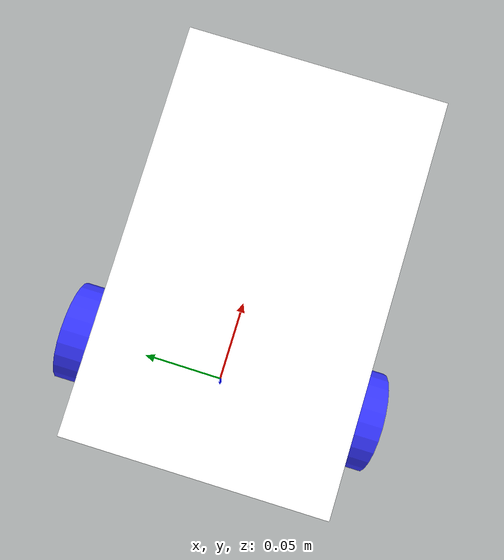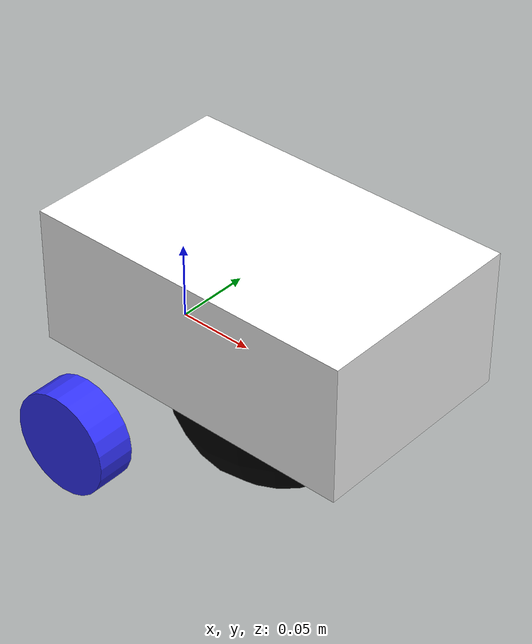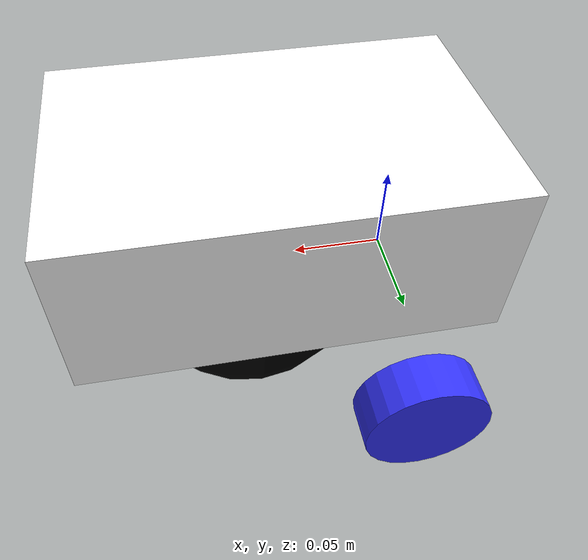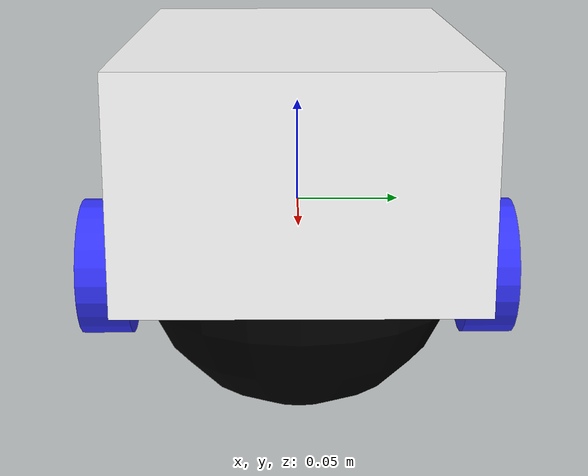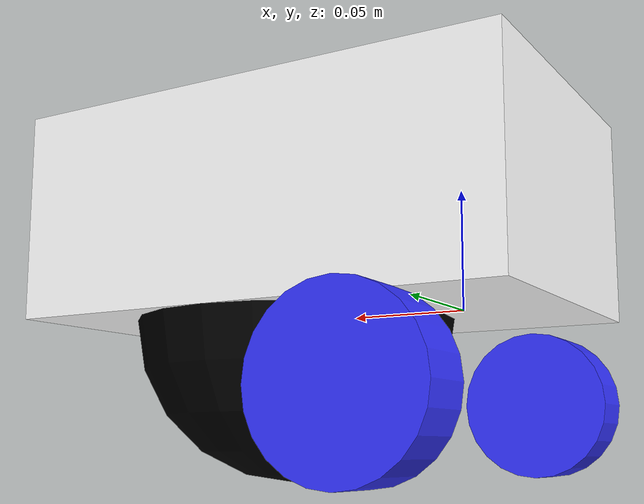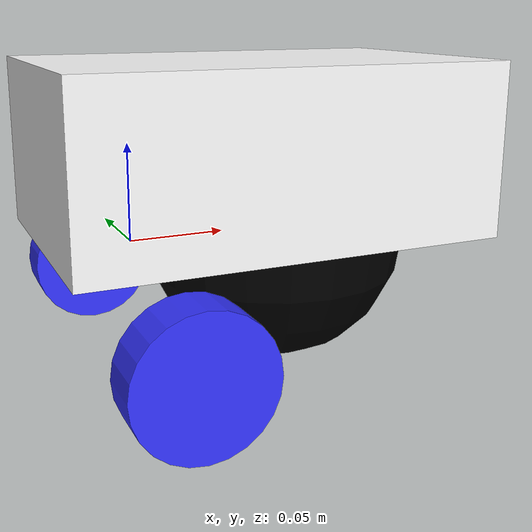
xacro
<?xml version="1.0"?>
<robot xmlns:xacro="http://www.ros.org/wiki/xacro">

    <xacro:include filename="inertial_macros.xacro"/>

    <material name="white">
        <color rgba="1 1 1 1"/>
    </material>

    <material name="orange">
        <color rgba="1 0.3 0.1 1"/>
    </material>

    <material name="blue">
        <color rgba="0.2 0.2 1 1"/>
    </material>

    <material name="black">
        <color rgba="0 0 0 1"/>
    </material>

    <material name="green">
        <color rgba="0 1 0 1"/>
    </material>

    <!-- BASE LINK-->
    <!-- base link origin centre point between two wheels -->
    <link name="base_link">

    </link>

    <!-- BASE_FOOTPRINT LINK -->
    <!-- Some nodes expect a base_footprint frame which should be the same as base_link except sitting on the floor. I just made it equal to base_link -->

    <joint name="base_footprint_joint" type="fixed">
        <parent link="base_link"/>
        <child link="base_footprint"/>
        <origin xyz="0 0 0" rpy="0 0 0"/>
    </joint>

    <link name="base_footprint">
    </link>

    <!-- CHASSIS LINK -->
    <joint name="chassis_joint" type="fixed">
        <parent link="base_link"/>
        <child link="chassis" />
        <origin xyz ="-0.045 0 0"/>
    </joint>

    <link name="chassis">
        <visual>
            <origin xyz="0.11 0 0.045"/> <!-- by default, chassis origin is in the centre, so shift it  forward by half in x and up by half in z-->
            <geometry>
                <box size="0.22 0.14 0.09"/>
            </geometry>
            <material name="white"/>
        </visual>
        <collision>
            <origin xyz="0.11 0 0.045"/> <!-- by default, chassis origin is in the centre, so shift it  forward by half in x and up by half in z-->
            <geometry>
                <box size="0.22 0.14 0.09"/>
            </geometry>
        </collision>
        <xacro:inertial_box mass="0.75" x="0.22" y="0.14" z="0.09">
            <origin xyz="0.11 0 0.045" rpy="0 0 0 "/>
        </xacro:inertial_box>
    </link>

    <gazebo reference="chassis">
        <material>Gazebo/White</material>
    </gazebo>

    <!-- LEFT WHEEL LINK -->
    <joint name = "left_wheel_joint" type="continuous">
        <parent link="base_link"/>
        <child link = "left_wheel"/>
        <origin xyz="0 0.095 -0.035" rpy="-${pi/2} 0 0"/> <!-- The left wheel is 0.1m left and 0.035m below the base link origin, and rotated to be on its side-->
        <axis xyz="0 0 1"/> <!-- Forward rotation is positive around z axis-->
    </joint>

    <link name = "left_wheel">
        <visual>
            <geometry>
                <cylinder radius="0.034" length="0.025"/>
            </geometry>
            <material name="blue"/>
        </visual>
        <collision>
            <geometry>
                <sphere radius="0.034"/>
            </geometry>
        </collision>
        <xacro:inertial_cylinder mass="0.1" length="0.025" radius="0.034">
            <origin xyz="0 0 0" rpy="0 0 0"/>
        </xacro:inertial_cylinder>
    </link>

    <gazebo reference="left_wheel">
        <material>Gazebo/Blue</material>
    </gazebo>

    <!-- RIGHT WHEEL LINK -->
    <joint name = "right_wheel_joint" type="continuous">
        <parent link="base_link"/>
        <child link = "right_wheel"/>
        <origin xyz="0 -0.095 -0.035" rpy="${pi/2} 0 0"/> <!-- The left wheel is 0.1m left and 0.035m below the base link origin, and rotated to be on its side-->
        <axis xyz="0 0 -1"/> <!-- Forward rotation is positive around -z axis-->
    </joint>

    <link name = "right_wheel">
        <visual>
            <geometry>
                <cylinder radius="0.034" length="0.025"/>
            </geometry>
            <material name="blue"/>
        </visual>
        <collision>
            <geometry>
                <sphere radius="0.034"/>
            </geometry>
        </collision>
        <xacro:inertial_cylinder mass="0.1" length="0.025" radius="0.034">
            <origin xyz="0 0 0" rpy="0 0 0"/>
        </xacro:inertial_cylinder>
    </link>

    <gazebo reference="right_wheel">
        <material>Gazebo/Blue</material>
    </gazebo>

    <!-- CASTER WHEEL LINK -->

    <joint name="caster_wheel_joint" type="fixed">
        <parent link="chassis"/>
        <child link="caster_wheel"/>
        <origin xyz="0.125 0 0"/>
    </joint>

    <link name="caster_wheel">
        <visual>
            <geometry>
                <sphere radius="0.07"/>
            </geometry>
            <material name="black"/>
        </visual>
        <collision>
            <geometry>
                <sphere radius="0.07"/>
            </geometry>
        </collision>
        <xacro:inertial_sphere mass="0.1" radius="0.07">
            <origin xyz="0 0 0" rpy="0 0 0"/>
        </xacro:inertial_sphere>
    </link>

    <gazebo reference="caster_wheel">
        <material>Gazebo/Black</material>
        <mu1 value="0.001"/>
        <mu2 value="0.001"/>
    </gazebo>

</robot>

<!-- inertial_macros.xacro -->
<robot xmlns:xacro="http://www.ros.org/wiki/xacro"  name="robot">

    <xacro:macro name="inertial_sphere" params="mass radius *origin">
        <inertial>
            <xacro:insert_block name="origin"/>
            <mass value="${mass}" />
            <inertia ixx="${(2/5) * mass * (radius*radius)}" ixy="0.0" ixz="0.0"
                    iyy="${(2/5) * mass * (radius*radius)}" iyz="0.0"
                    izz="${(2/5) * mass * (radius*radius)}" />
        </inertial>
    </xacro:macro>

    <xacro:macro name="inertial_box" params="mass x y z *origin">
        <inertial>
            <xacro:insert_block name="origin"/>
            <mass value="${mass}" />
            <inertia ixx="${(1/12) * mass * (y*y+z*z)}" ixy="0.0" ixz="0.0"
                    iyy="${(1/12) * mass * (x*x+z*z)}" iyz="0.0"
                    izz="${(1/12) * mass * (x*x+y*y)}" />
        </inertial>
    </xacro:macro>

    <xacro:macro name="inertial_cylinder" params="mass length radius *origin">
        <inertial>
            <xacro:insert_block name="origin"/>
            <mass value="${mass}" />
            <inertia ixx="${(1/12) * mass * (3*radius*radius + length*length)}" ixy="0.0" ixz="0.0"
                    iyy="${(1/12) * mass * (3*radius*radius + length*length)}" iyz="0.0"
                    izz="${(1/2) * mass * (radius*radius)}" />
        </inertial>
    </xacro:macro>

</robot>
